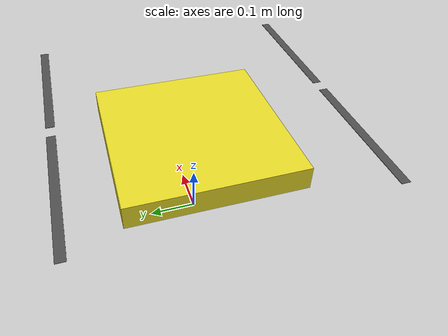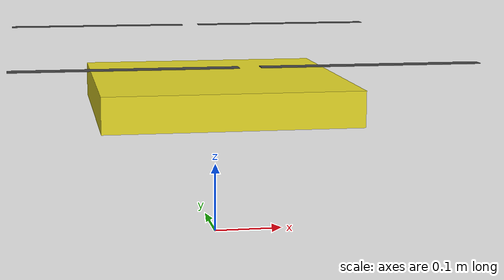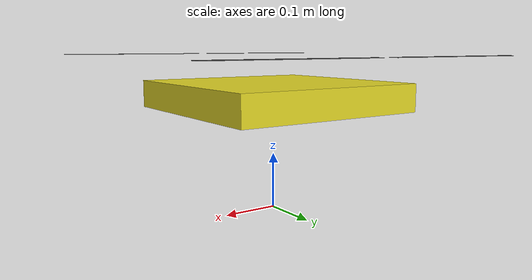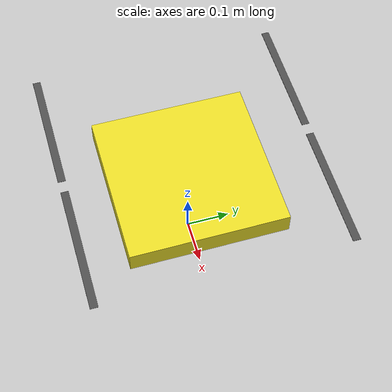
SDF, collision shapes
<?xml version="1.0" encoding="UTF-8"?>
<sdf version='1.9'>
  <model name='hw3_drone'>
    <pose>0 0 0.2 0 0 0</pose>
    <self_collide>false</self_collide>
    <static>false</static>
    <link name="base_link">
      <inertial>
        <mass>2.0</mass>
        <inertia>
          <ixx>0.02166666666666667</ixx>
          <ixy>0</ixy>
          <ixz>0</ixz>
          <iyy>0.02166666666666667</iyy>
          <iyz>0</iyz>
          <izz>0.04000000000000001</izz>
        </inertia>
      </inertial>
      <gravity>true</gravity>
      <velocity_decay/>

      <visual name="base_link_visual">
        <pose>-0.027 0 .025 0 0 1.57</pose>
        <geometry>
          <mesh>
            <scale>.005 .005 .005</scale>
            <uri>model://hw3_drone/meshes/Pandaereo.stl</uri>
          </mesh>
        </geometry>
        <material>
          <script>
            <name>Gazebo/Yellow</name>
            <uri>file://media/materials/scripts/gazebo.material</uri>
          </script>
        </material>
      </visual>

      <visual name="5010_motor_base_0">
        <pose>0.153 0.274 .052 0 0 -.45</pose>
        <geometry>
          <mesh>
            <scale>1 1 1</scale>
            <uri>model://hw3_drone/meshes/5010Base.dae</uri>
          </mesh>
        </geometry>
      </visual>
      <visual name="5010_motor_base_1">
        <pose>-0.153 0.274 .052 0 0 -.45</pose>
        <geometry>
          <mesh>
            <scale>1 1 1</scale>
            <uri>model://hw3_drone/meshes/5010Base.dae</uri>
          </mesh>
        </geometry>
      </visual>
      <visual name="5010_motor_base_2">
        <pose>0.153 -0.274 .052 0 0 -.45</pose>
        <geometry>
          <mesh>
            <scale>1 1 1</scale>
            <uri>model://hw3_drone/meshes/5010Base.dae</uri>
          </mesh>
        </geometry>
      </visual>
      <visual name="5010_motor_base_3">
        <pose>-0.153 -0.274 .052 0 0 -.45</pose>
        <geometry>
          <mesh>
            <scale>1 1 1</scale>
            <uri>model://hw3_drone/meshes/5010Base.dae</uri>
          </mesh>
        </geometry>
      </visual>

      <sensor name="air_pressure_sensor" type="air_pressure">
        <gz_frame_id>base_link</gz_frame_id>
        <always_on>1</always_on>
        <update_rate>50</update_rate>
        <air_pressure>
          <!-- Noise modeled after BMP390 -->
          <pressure>
            <noise type="gaussian">
              <mean>0</mean>
              <stddev>3</stddev>
            </noise>
          </pressure>
        </air_pressure>
      </sensor>
      <sensor name="magnetometer_sensor" type="magnetometer">
        <gz_frame_id>base_link</gz_frame_id>
        <always_on>1</always_on>
        <update_rate>100</update_rate>
        <magnetometer>
          <!-- TODO: update to fix units and coordinate system when we move past Harmonic -->
          <!-- See https://github.com/gazebosim/gz-sim/pull/2460 -->
          <!-- 3mgauss RMS: NOTE: noise is in tesla but sensor reports data in gauss -->
          <!-- Noise modeled after IIS2MDC -->
          <x>
            <noise type="gaussian">
              <stddev>0.0001</stddev>
            </noise>
          </x>
          <y>
            <noise type="gaussian">
              <stddev>0.0001</stddev>
            </noise>
          </y>
          <z>
            <noise type="gaussian">
              <stddev>0.0001</stddev>
            </noise>
          </z>
        </magnetometer>
      </sensor>
      <sensor name="imu_sensor" type="imu">
        <gz_frame_id>base_link</gz_frame_id>
        <always_on>1</always_on>
        <update_rate>250</update_rate>
        <imu>
          <angular_velocity>
            <!-- Noise modeled after IIM42653 -->
            <!-- 0.05 deg/s converted to rad/s -->
            <x>
              <noise type="gaussian">
                <mean>0.0</mean>
                <stddev>0.0008726646</stddev>
              </noise>
            </x>
            <y>
              <noise type="gaussian">
                <mean>0.0</mean>
                <stddev>0.0008726646</stddev>
              </noise>
            </y>
            <z>
              <noise type="gaussian">
                <mean>0.0</mean>
                <stddev>0.0008726646</stddev>
              </noise>
            </z>
          </angular_velocity>
          <linear_acceleration>
            <!-- Noise modeled after IIM42653 -->
            <!-- X & Y axis: 0.65 mg-rms converted to m/ss -->
            <x>
              <noise type="gaussian">
                <mean>0.0</mean>
                <stddev>0.00637</stddev>
              </noise>
            </x>
            <y>
              <noise type="gaussian">
                <mean>0.0</mean>
                <stddev>0.00637</stddev>
              </noise>
            </y>
            <!-- Z axis: 0.70 mg-rms converted to m/ss-->
            <z>
              <noise type="gaussian">
                <mean>0.0</mean>
                <stddev>0.00686</stddev>
              </noise>
            </z>
          </linear_acceleration>
        </imu>
      </sensor>
      <sensor name="navsat_sensor" type="navsat">
        <gz_frame_id>base_link</gz_frame_id>
        <always_on>1</always_on>
        <update_rate>30</update_rate>
      </sensor>

      <collision name="base_link_collision_0">
        <pose>0 0 .007 0 0 0</pose>
        <geometry>
          <box>
            <size>0.35355339059327373 0.35355339059327373 0.05</size>
          </box>
        </geometry>
        <surface>
          <contact>
            <ode>
              <min_depth>0.001</min_depth>
              <max_vel>0</max_vel>
            </ode>
          </contact>
          <friction>
            <ode/>
          </friction>
        </surface>
      </collision>

    </link>
    <link name="rotor_0">
      <gravity>true</gravity>
      <self_collide>false</self_collide>
      <velocity_decay/>
      <pose>0.153 -0.274 0.08 0 0 0</pose>
      <inertial>
          <mass>0.016076923076923075</mass>
          <inertia>
            <ixx>3.8464910483993325e-07</ixx>
            <iyy>2.6115851691700804e-05</iyy>
            <izz>2.649858234714004e-05</izz>
          </inertia>
        </inertial>
      <visual name="rotor_0_visual">
        <pose>-0.022 -0.14638461538461536 -0.016 0 0 0</pose>
        <geometry>
          <mesh>
            <scale>0.8461538461538461 0.8461538461538461 0.8461538461538461</scale>
            <uri>model://hw3_drone/meshes/1345_prop_ccw.stl</uri>
          </mesh>
        </geometry>
        <material>
          <script>
            <name>Gazebo/DarkGrey</name>
            <uri>file://media/materials/scripts/gazebo.material</uri>
          </script>
        </material>
      </visual>
      <visual name="rotor_0_visual_motor_bell">
        <pose>0 0 -.032 0 0 0</pose>
        <geometry>
          <mesh>
            <scale>1 1 1</scale>
            <uri>model://hw3_drone/meshes/5010Bell.dae</uri>
          </mesh>
        </geometry>
      </visual>
      <collision name="rotor_0_collision">
        <pose>0 0 0 0 0 0 </pose>
        <geometry>
          <box>
            <size>0.2792307692307692 0.016923076923076923 0.0008461538461538462</size>
          </box>
        </geometry>
        <surface>
          <contact>
            <ode>
              <min_depth>0.001</min_depth>
              <max_vel>0</max_vel>
            </ode>
          </contact>
          <friction>
            <ode/>
          </friction>
        </surface>
      </collision>
    </link>
    <joint name="rotor_0_joint" type="revolute">
      <parent>base_link</parent>
      <child>rotor_0</child>
      <axis>
        <xyz>0 0 1</xyz>
        <limit>
          <lower>-1e+16</lower>
          <upper>1e+16</upper>
        </limit>
        <dynamics>
          <spring_reference>0</spring_reference>
          <spring_stiffness>0</spring_stiffness>
        </dynamics>
      </axis>
    </joint>
    <link name="rotor_1">
      <gravity>true</gravity>
      <self_collide>false</self_collide>
      <velocity_decay/>
      <pose>-0.153 0.274 0.08 0 0 0</pose>
      <inertial>
          <mass>0.016076923076923075</mass>
          <inertia>
            <ixx>3.8464910483993325e-07</ixx>
            <iyy>2.6115851691700804e-05</iyy>
            <izz>2.649858234714004e-05</izz>
          </inertia>
        </inertial>
      <visual name="rotor_1_visual">
        <pose>-0.022 -0.14638461538461536 -0.016 0 0 0</pose>
        <geometry>
          <mesh>
            <scale>0.8461538461538461 0.8461538461538461 0.8461538461538461</scale>
            <uri>model://hw3_drone/meshes/1345_prop_ccw.stl</uri>
          </mesh>
        </geometry>
        <material>
          <script>
            <name>Gazebo/DarkGrey</name>
            <uri>file://media/materials/scripts/gazebo.material</uri>
          </script>
        </material>
      </visual>
      <visual name="rotor_1_visual_motor_top">
        <pose>0 0 -.032 0 0 0</pose>
        <geometry>
          <mesh>
            <scale>1 1 1</scale>
            <uri>model://hw3_drone/meshes/5010Bell.dae</uri>
          </mesh>
        </geometry>
      </visual>
      <collision name="rotor_1_collision">
        <pose>0 0 0 0 0 0 </pose>
        <geometry>
          <box>
            <size>0.2792307692307692 0.016923076923076923 0.0008461538461538462</size>
          </box>
        </geometry>
        <surface>
          <contact>
            <ode>
              <min_depth>0.001</min_depth>
              <max_vel>0</max_vel>
            </ode>
          </contact>
          <friction>
            <ode/>
          </friction>
        </surface>
      </collision>
    </link>
    <joint name="rotor_1_joint" type="revolute">
      <parent>base_link</parent>
      <child>rotor_1</child>
      <axis>
        <xyz>0 0 1</xyz>
        <limit>
          <lower>-1e+16</lower>
          <upper>1e+16</upper>
        </limit>
        <dynamics>
          <spring_reference>0</spring_reference>
          <spring_stiffness>0</spring_stiffness>
        </dynamics>
      </axis>
    </joint>

    <link name="rotor_2">
      <gravity>true</gravity>
      <self_collide>false</self_collide>
      <velocity_decay />
      <pose>0.153 0.274 0.08 0 0 0</pose>
      <inertial>
        <mass>0.016076923076923075</mass>
        <inertia>
          <ixx>3.8464910483993325e-07</ixx>
          <iyy>2.6115851691700804e-05</iyy>
          <izz>2.649858234714004e-05</izz>
        </inertia>
      </inertial>
      <visual name="rotor_2_visual">
        <pose>-0.022 -0.14638461538461536 -0.016 0 0 0</pose>
        <geometry>
          <mesh>
            <scale>0.8461538461538461 0.8461538461538461 0.8461538461538461</scale>
            <uri>model://x500_base/meshes/1345_prop_cw.stl</uri>
          </mesh>
        </geometry>
        <material>
          <script>
            <name>Gazebo/DarkGrey</name>
            <uri>file://media/materials/scripts/gazebo.material</uri>
          </script>
        </material>
      </visual>
      <visual name="rotor_2_visual_motor_top">
        <pose>0 0 -.032 0 0 0</pose>
        <geometry>
          <mesh>
            <scale>1 1 1</scale>
            <uri>model://x500_base/meshes/5010Bell.dae</uri>
          </mesh>
        </geometry>
      </visual>
      <collision name="rotor_2_collision">
        <pose>0 0 0 0 0 0 </pose>
        <geometry>
          <box>
            <size>0.2792307692307692 0.016923076923076923 0.0008461538461538462</size>
          </box>
        </geometry>
        <surface>
          <contact>
            <ode>
              <min_depth>0.001</min_depth>
              <max_vel>0</max_vel>
            </ode>
          </contact>
          <friction>
            <ode />
          </friction>
        </surface>
      </collision>
    </link>
    <joint name="rotor_2_joint" type="revolute">
      <parent>base_link</parent>
      <child>rotor_2</child>
      <axis>
        <xyz>0 0 1</xyz>
        <limit>
          <lower>-1e+16</lower>
          <upper>1e+16</upper>
        </limit>
        <dynamics>
          <spring_reference>0</spring_reference>
          <spring_stiffness>0</spring_stiffness>
        </dynamics>
      </axis>
    </joint>

    <link name="rotor_3">
      <gravity>true</gravity>
      <self_collide>false</self_collide>
      <velocity_decay/>
      <pose>-0.153 -0.274 0.08 0 0 0</pose>
      <inertial>
          <mass>0.016076923076923075</mass>
          <inertia>
            <ixx>3.8464910483993325e-07</ixx>
            <iyy>2.6115851691700804e-05</iyy>
            <izz>2.649858234714004e-05</izz>
          </inertia>
        </inertial>
      <visual name="rotor_3_visual">
        <pose>-0.022 -0.14638461538461536 -0.016 0 0 0</pose>
        <geometry>
          <mesh>
            <scale>0.8461538461538461 0.8461538461538461 0.8461538461538461</scale>
            <uri>model://hw3_drone/meshes/1345_prop_cw.stl</uri>
          </mesh>
        </geometry>
        <material>
          <script>
            <name>Gazebo/DarkGrey</name>
            <uri>file://media/materials/scripts/gazebo.material</uri>
          </script>
        </material>
      </visual>
      <visual name="rotor_3_visual_motor_top">
        <pose>0 0 -.032 0 0 0</pose>
        <geometry>
          <mesh>
            <scale>1 1 1</scale>
            <uri>model://hw3_drone/meshes/5010Bell.dae</uri>
          </mesh>
        </geometry>
      </visual>
      <collision name="rotor_3_collision">
        <pose>0 0 0 0 0 0 </pose>
        <geometry>
          <box>
            <size>0.2792307692307692 0.016923076923076923 0.0008461538461538462</size>
          </box>
        </geometry>
        <surface>
          <contact>
            <ode>
              <min_depth>0.001</min_depth>
              <max_vel>0</max_vel>
            </ode>
          </contact>
          <friction>
            <ode/>
          </friction>
        </surface>
      </collision>
    </link>
    <joint name="rotor_3_joint" type="revolute">
      <parent>base_link</parent>
      <child>rotor_3</child>
      <axis>
        <xyz>0 0 1</xyz>
        <limit>
          <lower>-1e+16</lower>
          <upper>1e+16</upper>
        </limit>
        <dynamics>
          <spring_reference>0</spring_reference>
          <spring_stiffness>0</spring_stiffness>
        </dynamics>
      </axis>
    </joint>

    <plugin filename="gz-sim-multicopter-motor-model-system" name="gz::sim::systems::MulticopterMotorModel">
      <jointName>rotor_0_joint</jointName>
      <linkName>rotor_0</linkName>
      <turningDirection>ccw</turningDirection>
      <timeConstantUp>0.0125</timeConstantUp>
      <timeConstantDown>0.025</timeConstantDown>
      <maxRotVelocity>1000.0</maxRotVelocity>
      <motorConstant>8.54858e-06</motorConstant>
      <momentConstant>0.016</momentConstant>
      <commandSubTopic>command/motor_speed</commandSubTopic>
      <motorNumber>0</motorNumber>
      <rotorDragCoefficient>8.06428e-05</rotorDragCoefficient>
      <rollingMomentCoefficient>1e-06</rollingMomentCoefficient>
      <rotorVelocitySlowdownSim>10</rotorVelocitySlowdownSim>
      <motorType>velocity</motorType>
    </plugin>
    <plugin filename="gz-sim-multicopter-motor-model-system" name="gz::sim::systems::MulticopterMotorModel">
      <jointName>rotor_1_joint</jointName>
      <linkName>rotor_1</linkName>
      <turningDirection>ccw</turningDirection>
      <timeConstantUp>0.0125</timeConstantUp>
      <timeConstantDown>0.025</timeConstantDown>
      <maxRotVelocity>1000.0</maxRotVelocity>
      <motorConstant>8.54858e-06</motorConstant>
      <momentConstant>0.016</momentConstant>
      <commandSubTopic>command/motor_speed</commandSubTopic>
      <motorNumber>1</motorNumber>
      <rotorDragCoefficient>8.06428e-05</rotorDragCoefficient>
      <rollingMomentCoefficient>1e-06</rollingMomentCoefficient>
      <rotorVelocitySlowdownSim>10</rotorVelocitySlowdownSim>
      <motorType>velocity</motorType>
    </plugin>
    <plugin filename="gz-sim-multicopter-motor-model-system" name="gz::sim::systems::MulticopterMotorModel">
      <jointName>rotor_2_joint</jointName>
      <linkName>rotor_2</linkName>
      <turningDirection>cw</turningDirection>
      <timeConstantUp>0.0125</timeConstantUp>
      <timeConstantDown>0.025</timeConstantDown>
      <maxRotVelocity>1000.0</maxRotVelocity>
      <motorConstant>8.54858e-06</motorConstant>
      <momentConstant>0.016</momentConstant>
      <commandSubTopic>command/motor_speed</commandSubTopic>
      <motorNumber>2</motorNumber>
      <rotorDragCoefficient>8.06428e-05</rotorDragCoefficient>
      <rollingMomentCoefficient>1e-06</rollingMomentCoefficient>
      <rotorVelocitySlowdownSim>10</rotorVelocitySlowdownSim>
      <motorType>velocity</motorType>
    </plugin>
    <plugin filename="gz-sim-multicopter-motor-model-system" name="gz::sim::systems::MulticopterMotorModel">
      <jointName>rotor_3_joint</jointName>
      <linkName>rotor_3</linkName>
      <turningDirection>cw</turningDirection>
      <timeConstantUp>0.0125</timeConstantUp>
      <timeConstantDown>0.025</timeConstantDown>
      <maxRotVelocity>1000.0</maxRotVelocity>
      <motorConstant>8.54858e-06</motorConstant>
      <momentConstant>0.016</momentConstant>
      <commandSubTopic>command/motor_speed</commandSubTopic>
      <motorNumber>3</motorNumber>
      <rotorDragCoefficient>8.06428e-05</rotorDragCoefficient>
      <rollingMomentCoefficient>1e-06</rollingMomentCoefficient>
      <rotorVelocitySlowdownSim>10</rotorVelocitySlowdownSim>
      <motorType>velocity</motorType>
    </plugin>
  </model>
</sdf>
